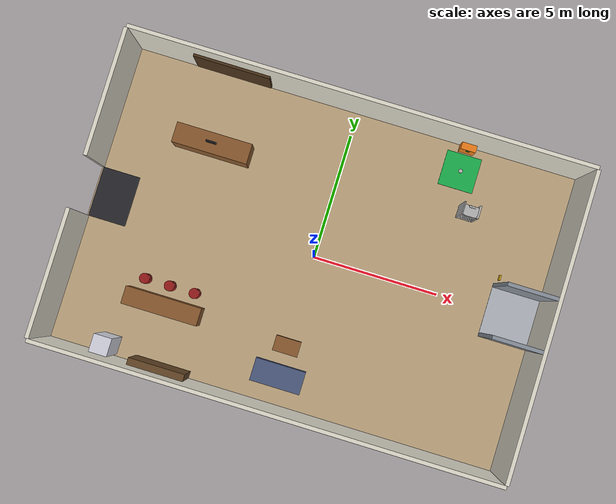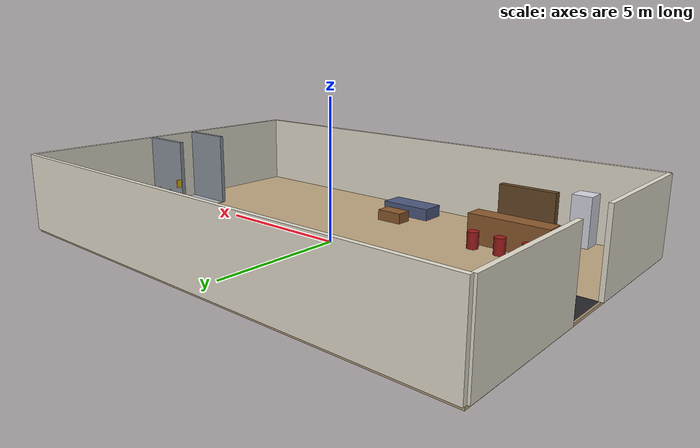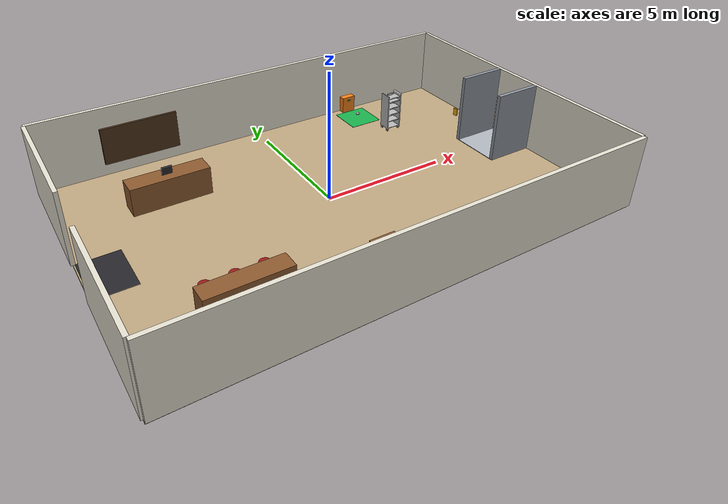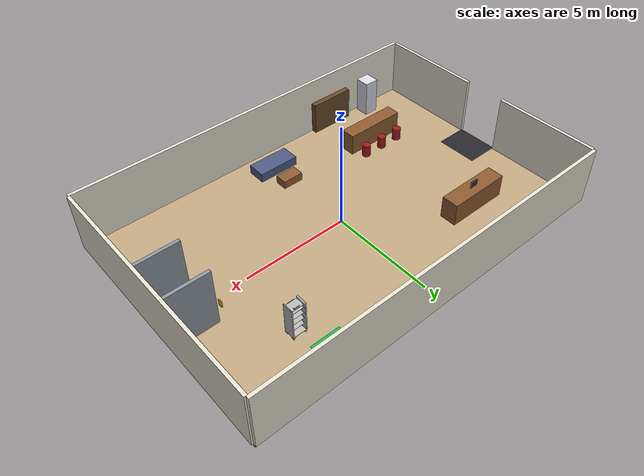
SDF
<?xml version="1.0" encoding="UTF-8"?>
<sdf version="1.9">
  <world name="floor_1">

    <!-- Inclusion du modèle (placé correctement dans le world) -->
    <include>
      <uri>model://conseption_mec</uri>
      <pose>4.5 4.9 0 1.5708 0 0</pose>
    </include>

    <!-- Configuration de la physique -->
    <physics name="1ms" type="dart">
      <max_step_size>0.001</max_step_size>
      <real_time_factor>1</real_time_factor>
    </physics>

    <!-- Plugins Gazebo Sim -->
    <plugin filename="gz-sim-physics-system" name="gz::sim::systems::Physics"/>
    <plugin filename="gz-sim-user-commands-system" name="gz::sim::systems::UserCommands"/>
    <plugin filename="gz-sim-scene-broadcaster-system" name="gz::sim::systems::SceneBroadcaster"/>
    <plugin filename="gz-sim-sensors-system" name="gz::sim::systems::Sensors">
      <render_engine>ogre2</render_engine>
    </plugin>
    <plugin filename="gz-sim-imu-system" name="gz::sim::systems::Imu"/>

    <!-- Configuration de la scène -->
    <scene>
      <ambient>0.7 0.7 0.7 1</ambient>
      <background>0.75 0.80 0.85 1</background>
    </scene>

    <!-- Sol principal -->
    <model name="rdc_sol">
      <static>true</static>
      <pose>0.000 0.000 -0.050 0 0 0.000</pose>
      <link name="link">
        <collision name="collision">
          <geometry><box><size>18.000 12.000 0.100</size></box></geometry>
        </collision>
        <visual name="visual">
          <geometry><box><size>18.000 12.000 0.100</size></box></geometry>
          <material>
            <ambient>0.75 0.65 0.5 1</ambient>
            <diffuse>0.75 0.65 0.5 1</diffuse>
            <specular>0.1 0.1 0.1 1</specular>
          </material>
        </visual>
      </link>
    </model>

    <!-- Murs périphériques -->
    <model name="rdc_mur_nord_0">
      <static>true</static>
      <pose>0.000 6.000 1.400 0 0 0.000</pose>
      <link name="link">
        <collision name="collision">
          <geometry><box><size>18.000 0.150 2.800</size></box></geometry>
        </collision>
        <visual name="visual">
          <geometry><box><size>18.000 0.150 2.800</size></box></geometry>
          <material>
            <ambient>0.9 0.88 0.82 1</ambient>
            <diffuse>0.9 0.88 0.82 1</diffuse>
            <specular>0.1 0.1 0.1 1</specular>
          </material>
        </visual>
      </link>
    </model>

    <model name="rdc_mur_sud_0">
      <static>true</static>
      <pose>0.000 -6.000 1.400 0 0 0.000</pose>
      <link name="link">
        <collision name="collision">
          <geometry><box><size>18.000 0.150 2.800</size></box></geometry>
        </collision>
        <visual name="visual">
          <geometry><box><size>18.000 0.150 2.800</size></box></geometry>
          <material>
            <ambient>0.9 0.88 0.82 1</ambient>
            <diffuse>0.9 0.88 0.82 1</diffuse>
            <specular>0.1 0.1 0.1 1</specular>
          </material>
        </visual>
      </link>
    </model>

    <model name="rdc_mur_est_0">
      <static>true</static>
      <pose>9.000 0.000 1.400 0 0 0.000</pose>
      <link name="link">
        <collision name="collision">
          <geometry><box><size>0.150 11.850 2.800</size></box></geometry>
        </collision>
        <visual name="visual">
          <geometry><box><size>0.150 11.850 2.800</size></box></geometry>
          <material>
            <ambient>0.9 0.88 0.82 1</ambient>
            <diffuse>0.9 0.88 0.82 1</diffuse>
            <specular>0.1 0.1 0.1 1</specular>
          </material>
        </visual>
      </link>
    </model>

    <model name="rdc_mur_ouest_0">
      <static>true</static>
      <pose>-9.000 -3.462 1.400 0 0 0.000</pose>
      <link name="link">
        <collision name="collision">
          <geometry><box><size>0.150 4.925 2.800</size></box></geometry>
        </collision>
        <visual name="visual">
          <geometry><box><size>0.150 4.925 2.800</size></box></geometry>
          <material>
            <ambient>0.9 0.88 0.82 1</ambient>
            <diffuse>0.9 0.88 0.82 1</diffuse>
            <specular>0.1 0.1 0.1 1</specular>
          </material>
        </visual>
      </link>
    </model>

    <model name="rdc_mur_ouest_1">
      <static>true</static>
      <pose>-9.000 3.462 1.400 0 0 0.000</pose>
      <link name="link">
        <collision name="collision">
          <geometry><box><size>0.150 4.925 2.800</size></box></geometry>
        </collision>
        <visual name="visual">
          <geometry><box><size>0.150 4.925 2.800</size></box></geometry>
          <material>
            <ambient>0.9 0.88 0.82 1</ambient>
            <diffuse>0.9 0.88 0.82 1</diffuse>
            <specular>0.1 0.1 0.1 1</specular>
          </material>
        </visual>
      </link>
    </model>

    <!-- Éclairage -->
    <light name="rdc_lumiere_1" type="point">
      <pose>-4.500 0.000 2.6 0 0 0</pose>
      <cast_shadows>false</cast_shadows>
      <diffuse>1 1 1 1</diffuse>
      <specular>0.3 0.3 0.3 1</specular>
      <attenuation>
        <range>20</range>
        <constant>0.5</constant>
        <linear>0.01</linear>
        <quadratic>0.001</quadratic>
      </attenuation>
    </light>

    <light name="rdc_lumiere_2" type="point">
      <pose>4.500 0.000 2.6 0 0 0</pose>
      <cast_shadows>false</cast_shadows>
      <diffuse>1 1 1 1</diffuse>
      <specular>0.3 0.3 0.3 1</specular>
      <attenuation>
        <range>20</range>
        <constant>0.5</constant>
        <linear>0.01</linear>
        <quadratic>0.001</quadratic>
      </attenuation>
    </light>

    <!-- Éléments intérieurs -->
    <model name="rdc_ascenseur_sol">
      <static>true</static>
      <pose>8.000 0.000 0.010 0 0 0.000</pose>
      <link name="link">
        <visual name="visual">
          <geometry><box><size>2.000 2.000 0.020</size></box></geometry>
          <material>
            <ambient>0.7 0.72 0.75 1</ambient>
            <diffuse>0.7 0.72 0.75 1</diffuse>
            <specular>0.1 0.1 0.1 1</specular>
          </material>
        </visual>
      </link>
    </model>

    <model name="rdc_ascenseur_cote_n_0">
      <static>true</static>
      <pose>7.963 1.000 1.400 0 0 0.000</pose>
      <link name="link">
        <collision name="collision">
          <geometry><box><size>1.925 0.150 2.800</size></box></geometry>
        </collision>
        <visual name="visual">
          <geometry><box><size>1.925 0.150 2.800</size></box></geometry>
          <material>
            <ambient>0.55 0.58 0.62 1</ambient>
            <diffuse>0.55 0.58 0.62 1</diffuse>
            <specular>0.1 0.1 0.1 1</specular>
          </material>
        </visual>
      </link>
    </model>

    <model name="rdc_ascenseur_cote_s_0">
      <static>true</static>
      <pose>7.963 -1.000 1.400 0 0 0.000</pose>
      <link name="link">
        <collision name="collision">
          <geometry><box><size>1.925 0.150 2.800</size></box></geometry>
        </collision>
        <visual name="visual">
          <geometry><box><size>1.925 0.150 2.800</size></box></geometry>
          <material>
            <ambient>0.55 0.58 0.62 1</ambient>
            <diffuse>0.55 0.58 0.62 1</diffuse>
            <specular>0.1 0.1 0.1 1</specular>
          </material>
        </visual>
      </link>
    </model>

    <model name="rdc_ascenseur_panneau">
      <static>true</static>
      <pose>6.950 1.250 1.200 0 0 0.000</pose>
      <link name="link">
        <visual name="visual">
          <geometry><box><size>0.050 0.200 0.300</size></box></geometry>
          <material>
            <ambient>0.9 0.7 0.1 1</ambient>
            <diffuse>0.9 0.7 0.1 1</diffuse>
            <specular>0.1 0.1 0.1 1</specular>
          </material>
        </visual>
      </link>
    </model>

    <model name="rdc_tapis_entree">
      <static>true</static>
      <pose>-8.200 0.000 0.005 0 0 0.000</pose>
      <link name="link">
        <visual name="visual">
          <geometry><box><size>1.500 2.000 0.010</size></box></geometry>
          <material>
            <ambient>0.15 0.15 0.17 1</ambient>
            <diffuse>0.15 0.15 0.17 1</diffuse>
            <specular>0.1 0.1 0.1 1</specular>
          </material>
        </visual>
      </link>
    </model>

    <model name="rdc_reception_comptoir">
      <static>true</static>
      <pose>-5.000 3.000 0.550 0 0 0.000</pose>
      <link name="link">
        <collision name="collision">
          <geometry><box><size>3.000 0.800 1.100</size></box></geometry>
        </collision>
        <visual name="visual">
          <geometry><box><size>3.000 0.800 1.100</size></box></geometry>
          <material>
            <ambient>0.55 0.35 0.18 1</ambient>
            <diffuse>0.55 0.35 0.18 1</diffuse>
            <specular>0.1 0.1 0.1 1</specular>
          </material>
        </visual>
      </link>
    </model>

    <model name="rdc_reception_ecran">
      <static>true</static>
      <pose>-5.000 3.000 1.250 0 0 0.000</pose>
      <link name="link">
        <visual name="visual">
          <geometry><box><size>0.400 0.050 0.300</size></box></geometry>
          <material>
            <ambient>0.15 0.15 0.17 1</ambient>
            <diffuse>0.15 0.15 0.17 1</diffuse>
            <specular>0.1 0.1 0.1 1</specular>
          </material>
        </visual>
      </link>
    </model>

    <model name="rdc_reception_tableau_cles">
      <static>true</static>
      <pose>-5.000 5.850 1.250 0 0 0.000</pose>
      <link name="link">
        <collision name="collision">
          <geometry><box><size>3.000 0.100 1.500</size></box></geometry>
        </collision>
        <visual name="visual">
          <geometry><box><size>3.000 0.100 1.500</size></box></geometry>
          <material>
            <ambient>0.3 0.2 0.1 1</ambient>
            <diffuse>0.3 0.2 0.1 1</diffuse>
            <specular>0.1 0.1 0.1 1</specular>
          </material>
        </visual>
      </link>
    </model>

    <model name="rdc_minibar_comptoir">
      <static>true</static>
      <pose>-5.000 -3.500 0.525 0 0 0.000</pose>
      <link name="link">
        <collision name="collision">
          <geometry><box><size>3.000 0.700 1.050</size></box></geometry>
        </collision>
        <visual name="visual">
          <geometry><box><size>3.000 0.700 1.050</size></box></geometry>
          <material>
            <ambient>0.55 0.35 0.18 1</ambient>
            <diffuse>0.55 0.35 0.18 1</diffuse>
            <specular>0.1 0.1 0.1 1</specular>
          </material>
        </visual>
      </link>
    </model>

    <model name="rdc_minibar_frigo">
      <static>true</static>
      <pose>-6.600 -5.500 0.900 0 0 0.000</pose>
      <link name="link">
        <collision name="collision">
          <geometry><box><size>0.700 0.700 1.800</size></box></geometry>
        </collision>
        <visual name="visual">
          <geometry><box><size>0.700 0.700 1.800</size></box></geometry>
          <material>
            <ambient>0.85 0.85 0.9 1</ambient>
            <diffuse>0.85 0.85 0.9 1</diffuse>
            <specular>0.1 0.1 0.1 1</specular>
          </material>
        </visual>
      </link>
    </model>

    <model name="rdc_minibar_etagere">
      <static>true</static>
      <pose>-4.400 -5.800 0.800 0 0 0.000</pose>
      <link name="link">
        <collision name="collision">
          <geometry><box><size>2.200 0.300 1.600</size></box></geometry>
        </collision>
        <visual name="visual">
          <geometry><box><size>2.200 0.300 1.600</size></box></geometry>
          <material>
            <ambient>0.4 0.28 0.15 1</ambient>
            <diffuse>0.4 0.28 0.15 1</diffuse>
            <specular>0.1 0.1 0.1 1</specular>
          </material>
        </visual>
      </link>
    </model>

    <model name="rdc_minibar_tabouret_1">
      <static>true</static>
      <pose>-6.000 -2.700 0.300 0 0 0.000</pose>
      <link name="link">
        <collision name="collision">
          <geometry><cylinder><radius>0.200</radius><length>0.600</length></cylinder></geometry>
        </collision>
        <visual name="visual">
          <geometry><cylinder><radius>0.200</radius><length>0.600</length></cylinder></geometry>
          <material>
            <ambient>0.6 0.1 0.1 1</ambient>
            <diffuse>0.6 0.1 0.1 1</diffuse>
            <specular>0.1 0.1 0.1 1</specular>
          </material>
        </visual>
      </link>
    </model>

    <model name="rdc_minibar_tabouret_2">
      <static>true</static>
      <pose>-5.000 -2.700 0.300 0 0 0.000</pose>
      <link name="link">
        <collision name="collision">
          <geometry><cylinder><radius>0.200</radius><length>0.600</length></cylinder></geometry>
        </collision>
        <visual name="visual">
          <geometry><cylinder><radius>0.200</radius><length>0.600</length></cylinder></geometry>
          <material>
            <ambient>0.6 0.1 0.1 1</ambient>
            <diffuse>0.6 0.1 0.1 1</diffuse>
            <specular>0.1 0.1 0.1 1</specular>
          </material>
        </visual>
      </link>
    </model>

    <model name="rdc_minibar_tabouret_3">
      <static>true</static>
      <pose>-4.000 -2.700 0.300 0 0 0.000</pose>
      <link name="link">
        <collision name="collision">
          <geometry><cylinder><radius>0.200</radius><length>0.600</length></cylinder></geometry>
        </collision>
        <visual name="visual">
          <geometry><cylinder><radius>0.200</radius><length>0.600</length></cylinder></geometry>
          <material>
            <ambient>0.6 0.1 0.1 1</ambient>
            <diffuse>0.6 0.1 0.1 1</diffuse>
            <specular>0.1 0.1 0.1 1</specular>
          </material>
        </visual>
      </link>
    </model>

    <model name="rdc_charge_zone">
      <static>true</static>
      <pose>4.500 4.900 0.005 0 0 0.000</pose>
      <link name="link">
        <visual name="visual">
          <geometry><box><size>1.400 1.400 0.010</size></box></geometry>
          <material>
            <ambient>0.1 0.7 0.3 1</ambient>
            <diffuse>0.1 0.7 0.3 1</diffuse>
            <specular>0.1 0.1 0.1 1</specular>
          </material>
        </visual>
      </link>
    </model>

    <model name="rdc_charge_borne">
      <static>true</static>
      <pose>4.500 5.800 0.350 0 0 0.000</pose>
      <link name="link">
        <collision name="collision">
          <geometry><box><size>0.600 0.300 0.700</size></box></geometry>
        </collision>
        <visual name="visual">
          <geometry><box><size>0.600 0.300 0.700</size></box></geometry>
          <material>
            <ambient>0.95 0.5 0.1 1</ambient>
            <diffuse>0.95 0.5 0.1 1</diffuse>
            <specular>0.1 0.1 0.1 1</specular>
          </material>
        </visual>
      </link>
    </model>

    <model name="rdc_charge_voyant">
      <static>true</static>
      <pose>4.500 5.640 0.550 0 0 0.000</pose>
      <link name="link">
        <visual name="visual">
          <geometry><box><size>0.150 0.020 0.050</size></box></geometry>
          <material>
            <ambient>0.1 0.7 0.3 1</ambient>
            <diffuse>0.1 0.7 0.3 1</diffuse>
            <specular>0.1 0.1 0.1 1</specular>
          </material>
        </visual>
      </link>
    </model>

    <model name="rdc_canape">
      <static>true</static>
      <pose>0.000 -4.800 0.225 0 0 0.000</pose>
      <link name="link">
        <collision name="collision">
          <geometry><box><size>2.000 0.900 0.450</size></box></geometry>
        </collision>
        <visual name="visual">
          <geometry><box><size>2.000 0.900 0.450</size></box></geometry>
          <material>
            <ambient>0.3 0.35 0.5 1</ambient>
            <diffuse>0.3 0.35 0.5 1</diffuse>
            <specular>0.1 0.1 0.1 1</specular>
          </material>
        </visual>
      </link>
    </model>

    <model name="rdc_table_basse">
      <static>true</static>
      <pose>0.000 -3.600 0.200 0 0 0.000</pose>
      <link name="link">
        <collision name="collision">
          <geometry><box><size>1.000 0.600 0.400</size></box></geometry>
        </collision>
        <visual name="visual">
          <geometry><box><size>1.000 0.600 0.400</size></box></geometry>
          <material>
            <ambient>0.55 0.35 0.18 1</ambient>
            <diffuse>0.55 0.35 0.18 1</diffuse>
            <specular>0.1 0.1 0.1 1</specular>
          </material>
        </visual>
      </link>
    </model>

  </world>
</sdf>

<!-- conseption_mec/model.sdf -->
<sdf version="1.9">
  <model name="conseption_mec">

    <static>false</static>
    <pose>0 0 0 1.5708 0 0</pose>

    <link name="link">

      <visual name="piece1">
        <geometry>
          <mesh>
            <uri>meshes/robo_cstam - Pièce1-1.STL</uri>
            <scale>0.001 0.001 0.001</scale>
          </mesh>
        </geometry>
      </visual>

      <visual name="piece3_1">
        <geometry>
          <mesh>
            <uri>meshes/robo_cstam - Pièce3-1.STL</uri>
            <scale>0.001 0.001 0.001</scale>
          </mesh>
        </geometry>
      </visual>

      <visual name="piece3_2">
        <geometry>
          <mesh>
            <uri>meshes/robo_cstam - Pièce3-2.STL</uri>
            <scale>0.001 0.001 0.001</scale>
          </mesh>
        </geometry>
      </visual>

      <visual name="piece3_3">
        <geometry>
          <mesh>
            <uri>meshes/robo_cstam - Pièce3-3.STL</uri>
            <scale>0.001 0.001 0.001</scale>
          </mesh>
        </geometry>
      </visual>

      <visual name="piece3_4">
        <geometry>
          <mesh>
            <uri>meshes/robo_cstam - Pièce3-4.STL</uri>
            <scale>0.001 0.001 0.001</scale>
          </mesh>
        </geometry>
      </visual>

      <visual name="etagere_1">
        <geometry>
          <mesh>
            <uri>meshes/robo_cstam - etagere - Copie-1.STL</uri>
            <scale>0.001 0.001 0.001</scale>
          </mesh>
        </geometry>
      </visual>

      <visual name="etagere_2">
        <geometry>
          <mesh>
            <uri>meshes/robo_cstam - etagere-1.STL</uri>
            <scale>0.001 0.001 0.001</scale>
          </mesh>
        </geometry>
      </visual>

      <visual name="etagere_3">
        <geometry>
          <mesh>
            <uri>meshes/robo_cstam - etagere-2.STL</uri>
            <scale>0.001 0.001 0.001</scale>
          </mesh>
        </geometry>
      </visual>

      <visual name="etagere_4">
        <geometry>
          <mesh>
            <uri>meshes/robo_cstam - etagere-3.STL</uri>
            <scale>0.001 0.001 0.001</scale>
          </mesh>
        </geometry>
      </visual>

      <visual name="etagere_5">
        <geometry>
          <mesh>
            <uri>meshes/robo_cstam - etagere-4.STL</uri>
            <scale>0.001 0.001 0.001</scale>
          </mesh>
        </geometry>
      </visual>

      <collision name="chassis_collision">
        <geometry><box><size>0.5 0.4 0.3</size></box></geometry>
      </collision>

      <inertial>
        <mass>5.0</mass>
        <inertia>
          <ixx>0.05</ixx><iyy>0.06</iyy><izz>0.04</izz>
          <ixy>0</ixy><ixz>0</ixz><iyz>0</iyz>
        </inertia>
      </inertial>

      <sensor name="lidar" type="gpu_lidar">
        <pose>0 0 0.25 0 0 0</pose>
        <topic>scan</topic>
        <update_rate>10</update_rate>
        <lidar>
          <scan>
            <horizontal>
              <samples>360</samples>
              <resolution>1</resolution>
              <min_angle>-3.14159</min_angle>
              <max_angle>3.14159</max_angle>
            </horizontal>
          </scan>
          <range>
            <min>0.12</min>
            <max>12.0</max>
            <resolution>0.01</resolution>
          </range>
        </lidar>
        <always_on>true</always_on>
        <visualize>true</visualize>
      </sensor>

    </link>

    <link name="left_wheel">
      <pose>0 0.2 0 1.5708 0 0</pose>
      <inertial>
        <mass>0.3</mass>
        <inertia>
          <ixx>0.001</ixx><iyy>0.001</iyy><izz>0.001</izz>
          <ixy>0</ixy><ixz>0</ixz><iyz>0</iyz>
        </inertia>
      </inertial>
      <collision name="left_wheel_collision">
        <geometry><cylinder><radius>0.08</radius><length>0.04</length></cylinder></geometry>
      </collision>
      <visual name="left_wheel_visual">
        <geometry><cylinder><radius>0.08</radius><length>0.04</length></cylinder></geometry>
      </visual>
    </link>

    <link name="right_wheel">
      <pose>0 -0.2 0 1.5708 0 0</pose>
      <inertial>
        <mass>0.3</mass>
        <inertia>
          <ixx>0.001</ixx><iyy>0.001</iyy><izz>0.001</izz>
          <ixy>0</ixy><ixz>0</ixz><iyz>0</iyz>
        </inertia>
      </inertial>
      <collision name="right_wheel_collision">
        <geometry><cylinder><radius>0.08</radius><length>0.04</length></cylinder></geometry>
      </collision>
      <visual name="right_wheel_visual">
        <geometry><cylinder><radius>0.08</radius><length>0.04</length></cylinder></geometry>
      </visual>
    </link>

    <joint name="left_wheel_joint" type="revolute">
      <parent>link</parent>
      <child>left_wheel</child>
      <axis>
        <xyz>0 0 1</xyz>
        <limit><effort>1000</effort><velocity>1000</velocity></limit>
      </axis>
    </joint>

    <joint name="right_wheel_joint" type="revolute">
      <parent>link</parent>
      <child>right_wheel</child>
      <axis>
        <xyz>0 0 1</xyz>
        <limit><effort>1000</effort><velocity>1000</velocity></limit>
      </axis>
    </joint>

    <plugin filename="gz-sim-diff-drive-system" name="gz::sim::systems::DiffDrive">
      <left_joint>left_wheel_joint</left_joint>
      <right_joint>right_wheel_joint</right_joint>
      <wheel_separation>0.4</wheel_separation>
      <wheel_radius>0.08</wheel_radius>
      <topic>cmd_vel</topic>
      <odom_topic>odom</odom_topic>
      <frame_id>odom</frame_id>
      <child_frame_id>link</child_frame_id>
    </plugin>

  </model>
</sdf>
